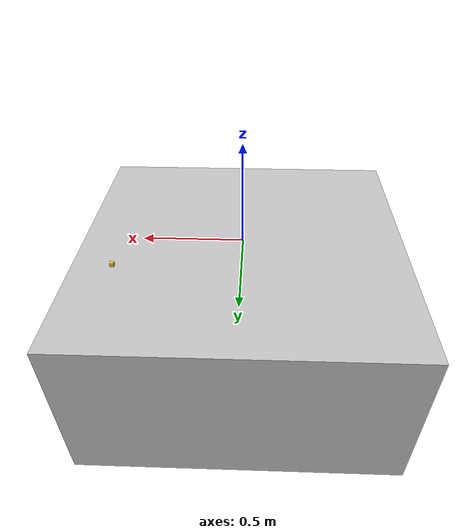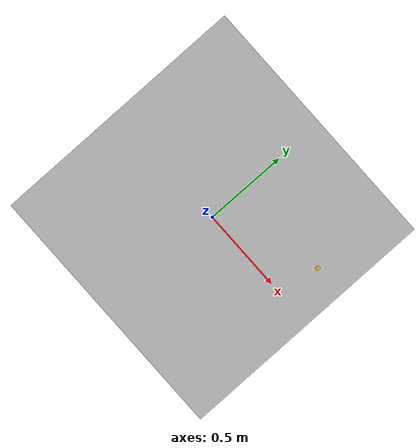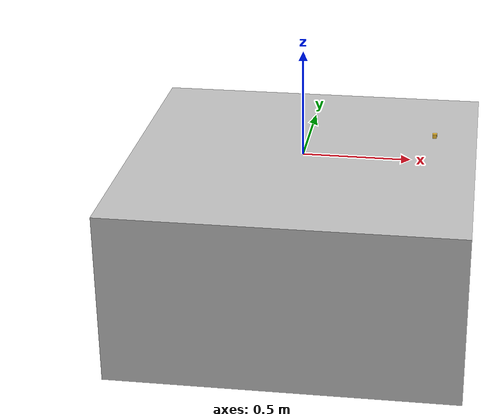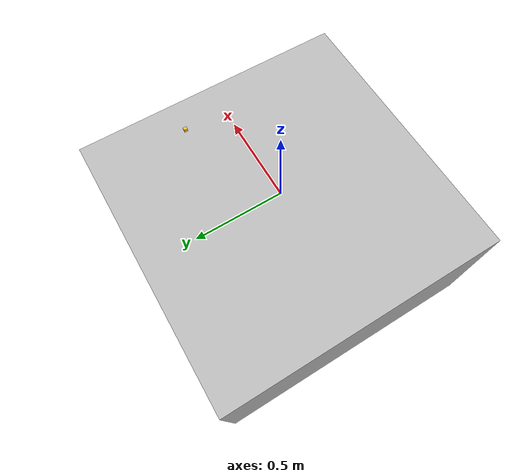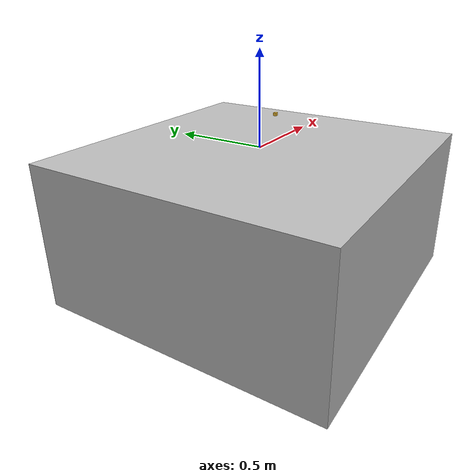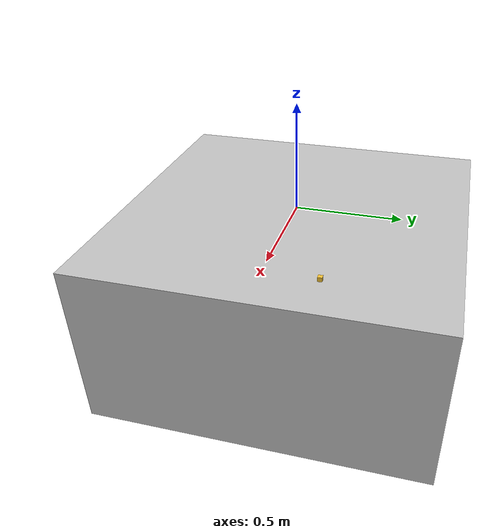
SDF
<?xml version="1.0"?>
<sdf version="1.8">
  <world name="ur_hande_tabletop">
    <physics name="1ms" type="dart">
      <max_step_size>0.001</max_step_size>
      <real_time_factor>1.0</real_time_factor>
      <dart>
        <solver>
          <use_gpu>true</use_gpu>
        </solver>
      </dart>
    </physics>

    <plugin
      filename="ignition-gazebo-physics-system"
      name="ignition::gazebo::systems::Physics">
    </plugin>
    <plugin
      filename="ignition-gazebo-sensors-system"
      name="ignition::gazebo::systems::Sensors">
      <render_engine>ogre</render_engine>
    </plugin>
    <plugin
      filename="ignition-gazebo-user-commands-system"
      name="ignition::gazebo::systems::UserCommands">
    </plugin>
    <plugin
      filename="ignition-gazebo-scene-broadcaster-system"
      name="ignition::gazebo::systems::SceneBroadcaster">
    </plugin>

    <scene>
      <ambient>0.6 0.6 0.6 1</ambient>
      <background>0.85 0.87 0.9 1</background>
      <shadows>true</shadows>
    </scene>

    <light type="directional" name="sun">
      <cast_shadows>true</cast_shadows>
      <pose>0 0 10 0 0 0</pose>
      <diffuse>0.9 0.9 0.9 1</diffuse>
      <specular>0.2 0.2 0.2 1</specular>
      <attenuation>
        <range>1000</range>
        <constant>0.9</constant>
        <linear>0.01</linear>
        <quadratic>0.001</quadratic>
      </attenuation>
      <direction>-0.4 0.2 -0.9</direction>
    </light>

    <!-- Static desk/table. Top surface sits at z=0 for easy robot spawn at z=0. -->
    <model name="table">
      <static>true</static>
      <pose>0 0 -0.4 0 0 0</pose>
      <link name="table_link">
        <collision name="table_collision">
          <geometry>
            <box>
              <size>1.6 1.6 0.8</size>
            </box>
          </geometry>
          <surface>
            <friction>
              <ode>
                <mu>1.0</mu>
                <mu2>1.0</mu2>
              </ode>
            </friction>
          </surface>
        </collision>
        <visual name="table_visual">
          <geometry>
            <box>
              <size>1.6 1.6 0.8</size>
            </box>
          </geometry>
          <material>
            <ambient>0.75 0.75 0.75 1</ambient>
            <diffuse>0.75 0.75 0.75 1</diffuse>
            <specular>0.1 0.1 0.1 1</specular>
          </material>
        </visual>
      </link>
    </model>

    <!-- Small cube target for arm + gripper interaction. -->
    <model name="target_cube">
      <static>false</static>
      <pose>0.60 0.25 0.023 0 0 0</pose>
      <link name="cube_link">
        <inertial>
          <mass>0.08</mass>
          <inertia>
            <ixx>0.00003</ixx>
            <ixy>0</ixy>
            <ixz>0</ixz>
            <iyy>0.00003</iyy>
            <iyz>0</iyz>
            <izz>0.00003</izz>
          </inertia>
        </inertial>
        <collision name="cube_collision">
          <geometry>
            <box>
              <size>0.02 0.02 0.02</size>
            </box>
          </geometry>
          <surface>
            <friction>
              <ode>
                <mu>0.9</mu>
                <mu2>0.9</mu2>
              </ode>
            </friction>
          </surface>
        </collision>
        <visual name="cube_visual">
          <geometry>
            <box>
              <size>0.02 0.02 0.02</size>
            </box>
          </geometry>
          <material>
            <ambient>0.95 0.75 0.2 1</ambient>
            <diffuse>0.95 0.75 0.2 1</diffuse>
            <specular>0.1 0.1 0.1 1</specular>
          </material>
        </visual>
      </link>
    </model>
  </world>
</sdf>
